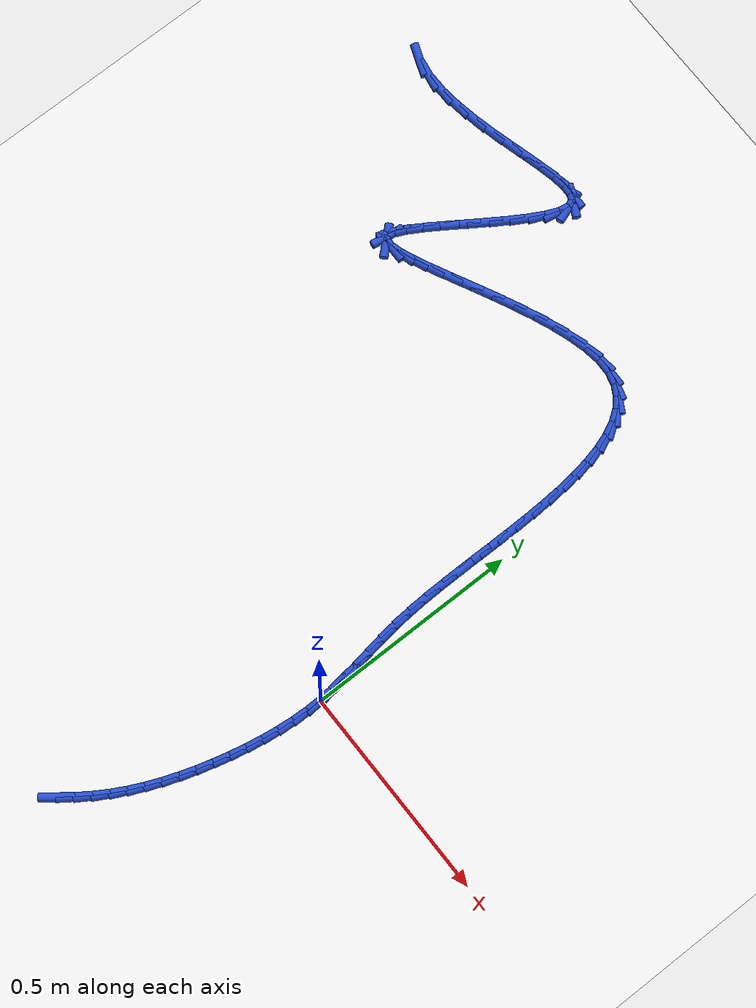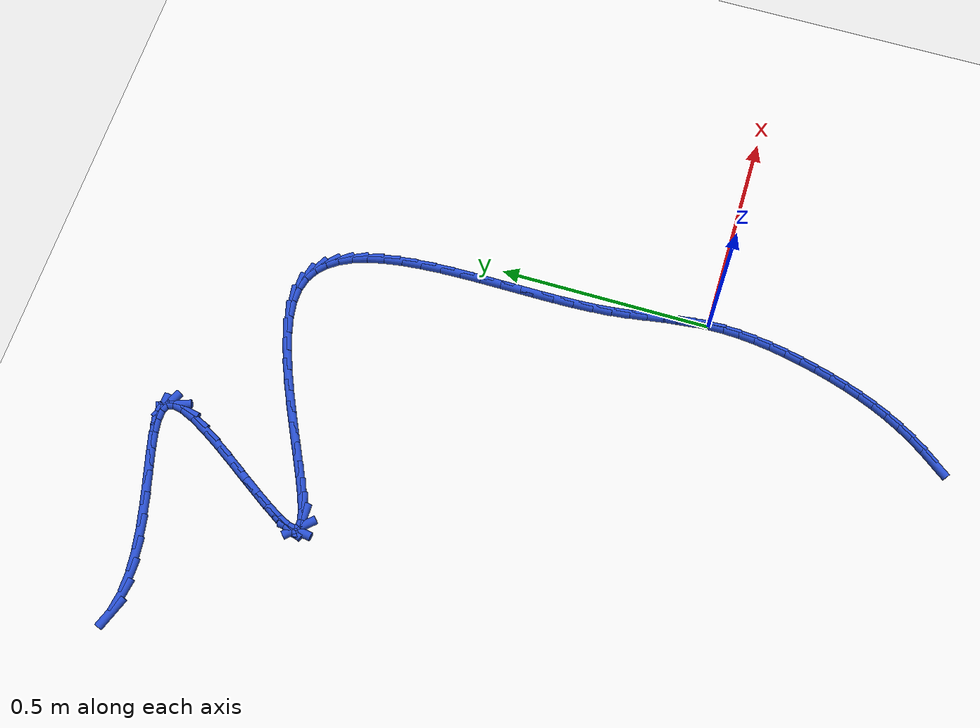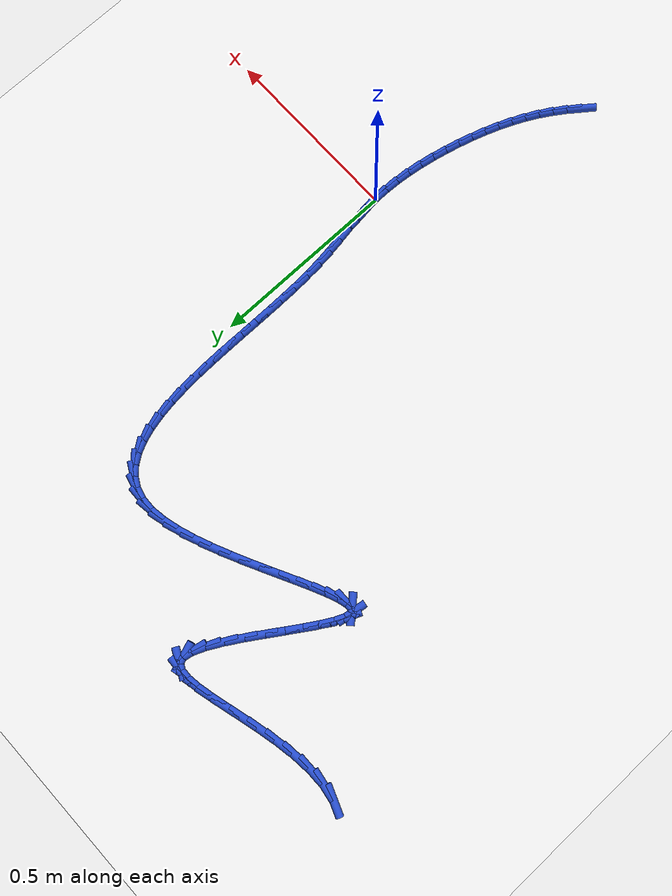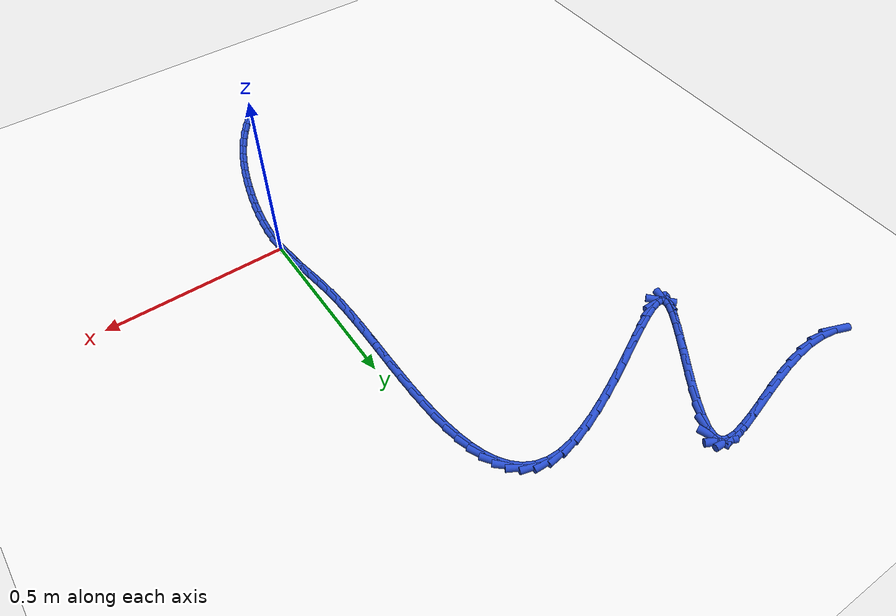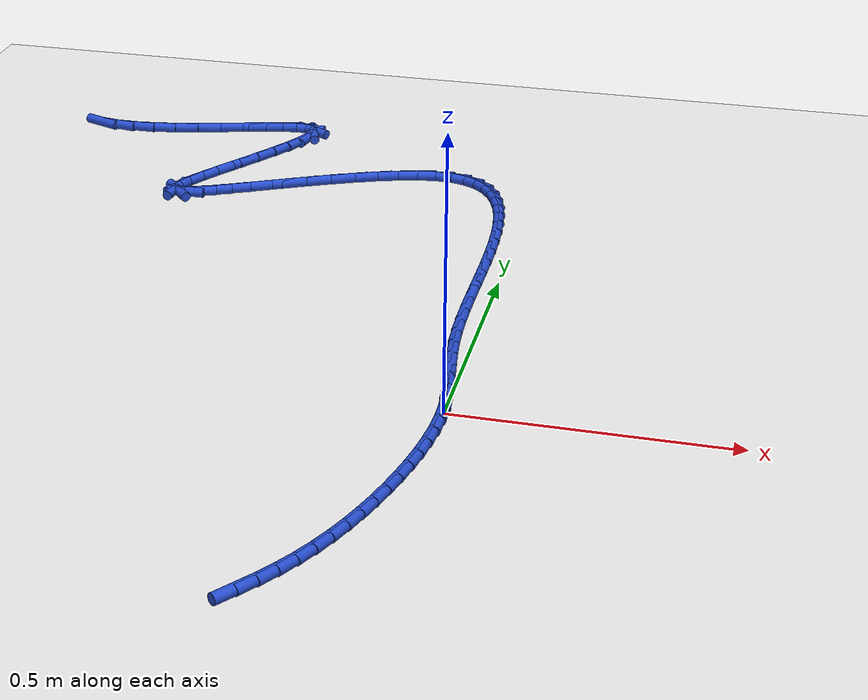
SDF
<sdf version="1.6">
 <world name="default">
  <model name="ground_plane">
   <static>1</static>
   <link name="link">
    <collision name="collision">
     <geometry><plane><normal>0 0 1</normal><size>100 100</size></plane></geometry>
     <surface><friction><ode><mu>100</mu><mu2>50</mu2></ode></friction></surface>
    </collision>
    <visual name="visual">
     <cast_shadows>0</cast_shadows>
     <geometry><plane><normal>0 0 1</normal><size>100 100</size></plane></geometry>
     <material>
      <script><uri>file://media/materials/scripts/gazebo.material</uri><name>Gazebo/WhiteGlow</name></script>
     </material>
    </visual>
   </link>
  </model>
  <model name="line">
   <link name="link_0">
    <pose>1.0408340855860843e-17 6.938893903907228e-18 0.01 0 1.57 -1.500443968666849</pose>
    <collision name="collision">
     <geometry><cylinder><radius>0.01</radius><length>0.08</length></cylinder></geometry>
    </collision>
    <visual name="visual">
     <material>
      <script><name>Gazebo/Blue</name><uri>file://media/materials/scripts/gazebo.material</uri></script>
     </material>
     <geometry><cylinder><radius>0.01</radius><length>0.08</length></cylinder></geometry>
    </visual>
   </link>
   <link name="link_1">
    <pose>-0.0025369876689253705 0.03600164637563605 0.01 0 1.57 -1.4529405909059698</pose>
    <collision name="collision">
     <geometry><cylinder><radius>0.01</radius><length>0.08</length></cylinder></geometry>
    </collision>
    <visual name="visual">
     <material>
      <script><name>Gazebo/Blue</name><uri>file://media/materials/scripts/gazebo.material</uri></script>
     </material>
     <geometry><cylinder><radius>0.01</radius><length>0.08</length></cylinder></geometry>
    </visual>
   </link>
   <link name="link_2">
    <pose>-0.0067697475077727115 0.07174996183603236 0.01 0 1.57 -1.4236694929863785</pose>
    <collision name="collision">
     <geometry><cylinder><radius>0.01</radius><length>0.08</length></cylinder></geometry>
    </collision>
    <visual name="visual">
     <material>
      <script><name>Gazebo/Blue</name><uri>file://media/materials/scripts/gazebo.material</uri></script>
     </material>
     <geometry><cylinder><radius>0.01</radius><length>0.08</length></cylinder></geometry>
    </visual>
   </link>
   <link name="link_3">
    <pose>-0.012106916807119367 0.10776381108110997 0.01 0 1.57 -1.4131349505841373</pose>
    <collision name="collision">
     <geometry><cylinder><radius>0.01</radius><length>0.08</length></cylinder></geometry>
    </collision>
    <visual name="visual">
     <material>
      <script><name>Gazebo/Blue</name><uri>file://media/materials/scripts/gazebo.material</uri></script>
     </material>
     <geometry><cylinder><radius>0.01</radius><length>0.08</length></cylinder></geometry>
    </visual>
   </link>
   <link name="link_4">
    <pose>-0.017957132857542687 0.1445620588107898 0.01 0 1.57 -1.4204519951015675</pose>
    <collision name="collision">
     <geometry><cylinder><radius>0.01</radius><length>0.08</length></cylinder></geometry>
    </collision>
    <visual name="visual">
     <material>
      <script><name>Gazebo/Blue</name><uri>file://media/materials/scripts/gazebo.material</uri></script>
     </material>
     <geometry><cylinder><radius>0.01</radius><length>0.08</length></cylinder></geometry>
    </visual>
   </link>
   <link name="link_5">
    <pose>-0.02372903294962001 0.18266356972499284 0.01 0 1.57 -1.4436858492961933</pose>
    <collision name="collision">
     <geometry><cylinder><radius>0.01</radius><length>0.08</length></cylinder></geometry>
    </collision>
    <visual name="visual">
     <material>
      <script><name>Gazebo/Blue</name><uri>file://media/materials/scripts/gazebo.material</uri></script>
     </material>
     <geometry><cylinder><radius>0.01</radius><length>0.08</length></cylinder></geometry>
    </visual>
   </link>
   <link name="link_6">
    <pose>-0.028831254373928694 0.22258720852364006 0.01 0 1.57 -1.4799480751914387</pose>
    <collision name="collision">
     <geometry><cylinder><radius>0.01</radius><length>0.08</length></cylinder></geometry>
    </collision>
    <visual name="visual">
     <material>
      <script><name>Gazebo/Blue</name><uri>file://media/materials/scripts/gazebo.material</uri></script>
     </material>
     <geometry><cylinder><radius>0.01</radius><length>0.08</length></cylinder></geometry>
    </visual>
   </link>
   <link name="link_7">
    <pose>-0.03268069156678858 0.2648427387323173 0.01 0 1.57 -1.5174231341432383</pose>
    <collision name="collision">
     <geometry><cylinder><radius>0.01</radius><length>0.08</length></cylinder></geometry>
    </collision>
    <visual name="visual">
     <material>
      <script><name>Gazebo/Blue</name><uri>file://media/materials/scripts/gazebo.material</uri></script>
     </material>
     <geometry><cylinder><radius>0.01</radius><length>0.08</length></cylinder></geometry>
    </visual>
   </link>
   <link name="link_8">
    <pose>-0.03506795434964404 0.309528008067227 0.01 0 1.57 -1.5443436570944173</pose>
    <collision name="collision">
     <geometry><cylinder><radius>0.01</radius><length>0.08</length></cylinder></geometry>
    </collision>
    <visual name="visual">
     <material>
      <script><name>Gazebo/Blue</name><uri>file://media/materials/scripts/gazebo.material</uri></script>
     </material>
     <geometry><cylinder><radius>0.01</radius><length>0.08</length></cylinder></geometry>
    </visual>
   </link>
   <link name="link_9">
    <pose>-0.03630203405338728 0.35616949483476634 0.01 0 1.57 -1.5618940222247308</pose>
    <collision name="collision">
     <geometry><cylinder><radius>0.01</radius><length>0.08</length></cylinder></geometry>
    </collision>
    <visual name="visual">
     <material>
      <script><name>Gazebo/Blue</name><uri>file://media/materials/scripts/gazebo.material</uri></script>
     </material>
     <geometry><cylinder><radius>0.01</radius><length>0.08</length></cylinder></geometry>
    </visual>
   </link>
   <link name="link_10">
    <pose>-0.03673008700555676 0.4042516111965887 0.01 0 1.57 1.5701674907434413</pose>
    <collision name="collision">
     <geometry><cylinder><radius>0.01</radius><length>0.08</length></cylinder></geometry>
    </collision>
    <visual name="visual">
     <material>
      <script><name>Gazebo/Blue</name><uri>file://media/materials/scripts/gazebo.material</uri></script>
     </material>
     <geometry><cylinder><radius>0.01</radius><length>0.08</length></cylinder></geometry>
    </visual>
   </link>
   <link name="link_11">
    <pose>-0.03669926953369084 0.4532587693143473 0.01 0 1.57 1.5679120502884816</pose>
    <collision name="collision">
     <geometry><cylinder><radius>0.01</radius><length>0.08</length></cylinder></geometry>
    </collision>
    <visual name="visual">
     <material>
      <script><name>Gazebo/Blue</name><uri>file://media/materials/scripts/gazebo.material</uri></script>
     </material>
     <geometry><cylinder><radius>0.01</radius><length>0.08</length></cylinder></geometry>
    </visual>
   </link>
   <link name="link_12">
    <pose>-0.03655673796532798 0.5026753813496957 0.01 0 1.57 -1.5689121318675527</pose>
    <collision name="collision">
     <geometry><cylinder><radius>0.01</radius><length>0.08</length></cylinder></geometry>
    </collision>
    <visual name="visual">
     <material>
      <script><name>Gazebo/Blue</name><uri>file://media/materials/scripts/gazebo.material</uri></script>
     </material>
     <geometry><cylinder><radius>0.01</radius><length>0.08</length></cylinder></geometry>
    </visual>
   </link>
   <link name="link_13">
    <pose>-0.03664964862800661 0.5519858594642875 0.01 0 1.57 -1.5569231878158445</pose>
    <collision name="collision">
     <geometry><cylinder><radius>0.01</radius><length>0.08</length></cylinder></geometry>
    </collision>
    <visual name="visual">
     <material>
      <script><name>Gazebo/Blue</name><uri>file://media/materials/scripts/gazebo.material</uri></script>
     </material>
     <geometry><cylinder><radius>0.01</radius><length>0.08</length></cylinder></geometry>
    </visual>
   </link>
   <link name="link_14">
    <pose>-0.03732515784926514 0.6006746158197754 0.01 0 1.57 -1.5370506717471328</pose>
    <collision name="collision">
     <geometry><cylinder><radius>0.01</radius><length>0.08</length></cylinder></geometry>
    </collision>
    <visual name="visual">
     <material>
      <script><name>Gazebo/Blue</name><uri>file://media/materials/scripts/gazebo.material</uri></script>
     </material>
     <geometry><cylinder><radius>0.01</radius><length>0.08</length></cylinder></geometry>
    </visual>
   </link>
   <link name="link_15">
    <pose>-0.03893042195664197 0.6482260625778136 0.01 0 1.57 -1.5080841927181026</pose>
    <collision name="collision">
     <geometry><cylinder><radius>0.01</radius><length>0.08</length></cylinder></geometry>
    </collision>
    <visual name="visual">
     <material>
      <script><name>Gazebo/Blue</name><uri>file://media/materials/scripts/gazebo.material</uri></script>
     </material>
     <geometry><cylinder><radius>0.01</radius><length>0.08</length></cylinder></geometry>
    </visual>
   </link>
   <link name="link_16">
    <pose>-0.04181259727767554 0.6941246119000548 0.01 0 1.57 -1.4681119663431792</pose>
    <collision name="collision">
     <geometry><cylinder><radius>0.01</radius><length>0.08</length></cylinder></geometry>
    </collision>
    <visual name="visual">
     <material>
      <script><name>Gazebo/Blue</name><uri>file://media/materials/scripts/gazebo.material</uri></script>
     </material>
     <geometry><cylinder><radius>0.01</radius><length>0.08</length></cylinder></geometry>
    </visual>
   </link>
   <link name="link_17">
    <pose>-0.046318840139904276 0.7378546759481527 0.01 0 1.57 -1.4142771526820412</pose>
    <collision name="collision">
     <geometry><cylinder><radius>0.01</radius><length>0.08</length></cylinder></geometry>
    </collision>
    <visual name="visual">
     <material>
      <script><name>Gazebo/Blue</name><uri>file://media/materials/scripts/gazebo.material</uri></script>
     </material>
     <geometry><cylinder><radius>0.01</radius><length>0.08</length></cylinder></geometry>
    </visual>
   </link>
   <link name="link_18">
    <pose>-0.052796306870866595 0.7789006668837611 0.01 0 1.57 -1.3424406977237866</pose>
    <collision name="collision">
     <geometry><cylinder><radius>0.01</radius><length>0.08</length></cylinder></geometry>
    </collision>
    <visual name="visual">
     <material>
      <script><name>Gazebo/Blue</name><uri>file://media/materials/scripts/gazebo.material</uri></script>
     </material>
     <geometry><cylinder><radius>0.01</radius><length>0.08</length></cylinder></geometry>
    </visual>
   </link>
   <link name="link_19">
    <pose>-0.061592153798100825 0.8167469968685326 0.01 0 1.57 -1.2468230367276674</pose>
    <collision name="collision">
     <geometry><cylinder><radius>0.01</radius><length>0.08</length></cylinder></geometry>
    </collision>
    <visual name="visual">
     <material>
      <script><name>Gazebo/Blue</name><uri>file://media/materials/scripts/gazebo.material</uri></script>
     </material>
     <geometry><cylinder><radius>0.01</radius><length>0.08</length></cylinder></geometry>
    </visual>
   </link>
   <link name="link_20">
    <pose>-0.07305353724914557 0.8508780780641211 0.01 0 1.57 -1.1199665621676775</pose>
    <collision name="collision">
     <geometry><cylinder><radius>0.01</radius><length>0.08</length></cylinder></geometry>
    </collision>
    <visual name="visual">
     <material>
      <script><name>Gazebo/Blue</name><uri>file://media/materials/scripts/gazebo.material</uri></script>
     </material>
     <geometry><cylinder><radius>0.01</radius><length>0.08</length></cylinder></geometry>
    </visual>
   </link>
   <link name="link_21">
    <pose>-0.08752761355153912 0.8807783226321797 0.01 0 1.57 -0.9540591162776518</pose>
    <collision name="collision">
     <geometry><cylinder><radius>0.01</radius><length>0.08</length></cylinder></geometry>
    </collision>
    <visual name="visual">
     <material>
      <script><name>Gazebo/Blue</name><uri>file://media/materials/scripts/gazebo.material</uri></script>
     </material>
     <geometry><cylinder><radius>0.01</radius><length>0.08</length></cylinder></geometry>
    </visual>
   </link>
   <link name="link_22">
    <pose>-0.10536153903281986 0.9059321427343617 0.01 0 1.57 -0.7456167441606393</pose>
    <collision name="collision">
     <geometry><cylinder><radius>0.01</radius><length>0.08</length></cylinder></geometry>
    </collision>
    <visual name="visual">
     <material>
      <script><name>Gazebo/Blue</name><uri>file://media/materials/scripts/gazebo.material</uri></script>
     </material>
     <geometry><cylinder><radius>0.01</radius><length>0.08</length></cylinder></geometry>
    </visual>
   </link>
   <link name="link_23">
    <pose>-0.12690247002052626 0.9258239505323209 0.01 0 1.57 -0.5039495929432688</pose>
    <collision name="collision">
     <geometry><cylinder><radius>0.01</radius><length>0.08</length></cylinder></geometry>
    </collision>
    <visual name="visual">
     <material>
      <script><name>Gazebo/Blue</name><uri>file://media/materials/scripts/gazebo.material</uri></script>
     </material>
     <geometry><cylinder><radius>0.01</radius><length>0.08</length></cylinder></geometry>
    </visual>
   </link>
   <link name="link_24">
    <pose>-0.15249756284219687 0.9399381581877106 0.01 0 1.57 -0.25505344413963066</pose>
    <collision name="collision">
     <geometry><cylinder><radius>0.01</radius><length>0.08</length></cylinder></geometry>
    </collision>
    <visual name="visual">
     <material>
      <script><name>Gazebo/Blue</name><uri>file://media/materials/scripts/gazebo.material</uri></script>
     </material>
     <geometry><cylinder><radius>0.01</radius><length>0.08</length></cylinder></geometry>
    </visual>
   </link>
   <link name="link_25">
    <pose>-0.18249397382536997 0.9477591778621841 0.01 0 1.57 -0.029323682449118125</pose>
    <collision name="collision">
     <geometry><cylinder><radius>0.01</radius><length>0.08</length></cylinder></geometry>
    </collision>
    <visual name="visual">
     <material>
      <script><name>Gazebo/Blue</name><uri>file://media/materials/scripts/gazebo.material</uri></script>
     </material>
     <geometry><cylinder><radius>0.01</radius><length>0.08</length></cylinder></geometry>
    </visual>
   </link>
   <link name="link_26">
    <pose>-0.21723323922063867 0.9487781531308197 0.01 0 1.57 0.14458358745321898</pose>
    <collision name="collision">
     <geometry><cylinder><radius>0.01</radius><length>0.08</length></cylinder></geometry>
    </collision>
    <visual name="visual">
     <material>
      <script><name>Gazebo/Blue</name><uri>file://media/materials/scripts/gazebo.material</uri></script>
     </material>
     <geometry><cylinder><radius>0.01</radius><length>0.08</length></cylinder></geometry>
    </visual>
   </link>
   <link name="link_27">
    <pose>-0.25658774041202315 0.9430481549938726 0.01 0 1.57 0.2600713470197988</pose>
    <collision name="collision">
     <geometry><cylinder><radius>0.01</radius><length>0.08</length></cylinder></geometry>
    </collision>
    <visual name="visual">
     <material>
      <script><name>Gazebo/Blue</name><uri>file://media/materials/scripts/gazebo.material</uri></script>
     </material>
     <geometry><cylinder><radius>0.01</radius><length>0.08</length></cylinder></geometry>
    </visual>
   </link>
   <link name="link_28">
    <pose>-0.29961452426344165 0.9315988164787293 0.01 0 1.57 0.3377523772484208</pose>
    <collision name="collision">
     <geometry><cylinder><radius>0.01</radius><length>0.08</length></cylinder></geometry>
    </collision>
    <visual name="visual">
     <material>
      <script><name>Gazebo/Blue</name><uri>file://media/materials/scripts/gazebo.material</uri></script>
     </material>
     <geometry><cylinder><radius>0.01</radius><length>0.08</length></cylinder></geometry>
    </visual>
   </link>
   <link name="link_29">
    <pose>-0.34528908086877824 0.9155574547445142 0.01 0 1.57 0.3911581954063963</pose>
    <collision name="collision">
     <geometry><cylinder><radius>0.01</radius><length>0.08</length></cylinder></geometry>
    </collision>
    <visual name="visual">
     <material>
      <script><name>Gazebo/Blue</name><uri>file://media/materials/scripts/gazebo.material</uri></script>
     </material>
     <geometry><cylinder><radius>0.01</radius><length>0.08</length></cylinder></geometry>
    </visual>
   </link>
   <link name="link_30">
    <pose>-0.39258690032191607 0.8960513869503501 0.01 0 1.57 0.42787759025588906</pose>
    <collision name="collision">
     <geometry><cylinder><radius>0.01</radius><length>0.08</length></cylinder></geometry>
    </collision>
    <visual name="visual">
     <material>
      <script><name>Gazebo/Blue</name><uri>file://media/materials/scripts/gazebo.material</uri></script>
     </material>
     <geometry><cylinder><radius>0.01</radius><length>0.08</length></cylinder></geometry>
    </visual>
   </link>
   <link name="link_31">
    <pose>-0.44048347271673927 0.8742079302553609 0.01 0 1.57 0.45209037355442655</pose>
    <collision name="collision">
     <geometry><cylinder><radius>0.01</radius><length>0.08</length></cylinder></geometry>
    </collision>
    <visual name="visual">
     <material>
      <script><name>Gazebo/Blue</name><uri>file://media/materials/scripts/gazebo.material</uri></script>
     </material>
     <geometry><cylinder><radius>0.01</radius><length>0.08</length></cylinder></geometry>
    </visual>
   </link>
   <link name="link_32">
    <pose>-0.4879542881471314 0.8511544018186704 0.01 0 1.57 0.4658356868698599</pose>
    <collision name="collision">
     <geometry><cylinder><radius>0.01</radius><length>0.08</length></cylinder></geometry>
    </collision>
    <visual name="visual">
     <material>
      <script><name>Gazebo/Blue</name><uri>file://media/materials/scripts/gazebo.material</uri></script>
     </material>
     <geometry><cylinder><radius>0.01</radius><length>0.08</length></cylinder></geometry>
    </visual>
   </link>
   <link name="link_33">
    <pose>-0.5339748367069761 0.8280181187994025 0.01 0 1.57 0.4694878983341049</pose>
    <collision name="collision">
     <geometry><cylinder><radius>0.01</radius><length>0.08</length></cylinder></geometry>
    </collision>
    <visual name="visual">
     <material>
      <script><name>Gazebo/Blue</name><uri>file://media/materials/scripts/gazebo.material</uri></script>
     </material>
     <geometry><cylinder><radius>0.01</radius><length>0.08</length></cylinder></geometry>
    </visual>
   </link>
   <link name="link_34">
    <pose>-0.5775206084901567 0.80592639835668 0.01 0 1.57 0.4615798399852503</pose>
    <collision name="collision">
     <geometry><cylinder><radius>0.01</radius><length>0.08</length></cylinder></geometry>
    </collision>
    <visual name="visual">
     <material>
      <script><name>Gazebo/Blue</name><uri>file://media/materials/scripts/gazebo.material</uri></script>
     </material>
     <geometry><cylinder><radius>0.01</radius><length>0.08</length></cylinder></geometry>
    </visual>
   </link>
   <link name="link_35">
    <pose>-0.6175670935905574 0.7860065576496273 0.01 0 1.57 0.43762970539203705</pose>
    <collision name="collision">
     <geometry><cylinder><radius>0.01</radius><length>0.08</length></cylinder></geometry>
    </collision>
    <visual name="visual">
     <material>
      <script><name>Gazebo/Blue</name><uri>file://media/materials/scripts/gazebo.material</uri></script>
     </material>
     <geometry><cylinder><radius>0.01</radius><length>0.08</length></cylinder></geometry>
    </visual>
   </link>
   <link name="link_36">
    <pose>-0.6530897821020614 0.7693859138373679 0.01 0 1.57 0.38637044259434405</pose>
    <collision name="collision">
     <geometry><cylinder><radius>0.01</radius><length>0.08</length></cylinder></geometry>
    </collision>
    <visual name="visual">
     <material>
      <script><name>Gazebo/Blue</name><uri>file://media/materials/scripts/gazebo.material</uri></script>
     </material>
     <geometry><cylinder><radius>0.01</radius><length>0.08</length></cylinder></geometry>
    </visual>
   </link>
   <link name="link_37">
    <pose>-0.6830641641185524 0.7571917840790253 0.01 0 1.57 0.2764868054256121</pose>
    <collision name="collision">
     <geometry><cylinder><radius>0.01</radius><length>0.08</length></cylinder></geometry>
    </collision>
    <visual name="visual">
     <material>
      <script><name>Gazebo/Blue</name><uri>file://media/materials/scripts/gazebo.material</uri></script>
     </material>
     <geometry><cylinder><radius>0.01</radius><length>0.08</length></cylinder></geometry>
    </visual>
   </link>
   <link name="link_38">
    <pose>-0.7064657297339147 0.7505514855337232 0.01 0 1.57 -0.0025847328109349192</pose>
    <collision name="collision">
     <geometry><cylinder><radius>0.01</radius><length>0.08</length></cylinder></geometry>
    </collision>
    <visual name="visual">
     <material>
      <script><name>Gazebo/Blue</name><uri>file://media/materials/scripts/gazebo.material</uri></script>
     </material>
     <geometry><cylinder><radius>0.01</radius><length>0.08</length></cylinder></geometry>
    </visual>
   </link>
   <link name="link_39">
    <pose>-0.7222699690420312 0.7505923353605852 0.01 0 1.57 -0.8297360873263988</pose>
    <collision name="collision">
     <geometry><cylinder><radius>0.01</radius><length>0.08</length></cylinder></geometry>
    </collision>
    <visual name="visual">
     <material>
      <script><name>Gazebo/Blue</name><uri>file://media/materials/scripts/gazebo.material</uri></script>
     </material>
     <geometry><cylinder><radius>0.01</radius><length>0.08</length></cylinder></geometry>
    </visual>
   </link>
   <link name="link_40">
    <pose>-0.7294523721367859 0.758441650718735 0.01 0 1.57 1.431003141177874</pose>
    <collision name="collision">
     <geometry><cylinder><radius>0.01</radius><length>0.08</length></cylinder></geometry>
    </collision>
    <visual name="visual">
     <material>
      <script><name>Gazebo/Blue</name><uri>file://media/materials/scripts/gazebo.material</uri></script>
     </material>
     <geometry><cylinder><radius>0.01</radius><length>0.08</length></cylinder></geometry>
    </visual>
   </link>
   <link name="link_41">
    <pose>-0.7271064222086081 0.7751137678074754 0.01 0 1.57 1.1502650298836266</pose>
    <collision name="collision">
     <geometry><cylinder><radius>0.01</radius><length>0.08</length></cylinder></geometry>
    </collision>
    <visual name="visual">
     <material>
      <script><name>Gazebo/Blue</name><uri>file://media/materials/scripts/gazebo.material</uri></script>
     </material>
     <geometry><cylinder><radius>0.01</radius><length>0.08</length></cylinder></geometry>
    </visual>
   </link>
   <link name="link_42">
    <pose>-0.7159444178381522 0.8000729718323228 0.01 0 1.57 1.0506521598981609</pose>
    <collision name="collision">
     <geometry><cylinder><radius>0.01</radius><length>0.08</length></cylinder></geometry>
    </collision>
    <visual name="visual">
     <material>
      <script><name>Gazebo/Blue</name><uri>file://media/materials/scripts/gazebo.material</uri></script>
     </material>
     <geometry><cylinder><radius>0.01</radius><length>0.08</length></cylinder></geometry>
    </visual>
   </link>
   <link name="link_43">
    <pose>-0.6978538093017287 0.8316583146555109 0.01 0 1.57 1.0067605238913357</pose>
    <collision name="collision">
     <geometry><cylinder><radius>0.01</radius><length>0.08</length></cylinder></geometry>
    </collision>
    <visual name="visual">
     <material>
      <script><name>Gazebo/Blue</name><uri>file://media/materials/scripts/gazebo.material</uri></script>
     </material>
     <geometry><cylinder><radius>0.01</radius><length>0.08</length></cylinder></geometry>
    </visual>
   </link>
   <link name="link_44">
    <pose>-0.6747484437576611 0.8681835725498236 0.01 0 1.57 0.9882613577577913</pose>
    <collision name="collision">
     <geometry><cylinder><radius>0.01</radius><length>0.08</length></cylinder></geometry>
    </collision>
    <visual name="visual">
     <material>
      <script><name>Gazebo/Blue</name><uri>file://media/materials/scripts/gazebo.material</uri></script>
     </material>
     <geometry><cylinder><radius>0.01</radius><length>0.08</length></cylinder></geometry>
    </visual>
   </link>
   <link name="link_45">
    <pose>-0.6485421683642731 0.9079625217880456 0.01 0 1.57 0.985661417324409</pose>
    <collision name="collision">
     <geometry><cylinder><radius>0.01</radius><length>0.08</length></cylinder></geometry>
    </collision>
    <visual name="visual">
     <material>
      <script><name>Gazebo/Blue</name><uri>file://media/materials/scripts/gazebo.material</uri></script>
     </material>
     <geometry><cylinder><radius>0.01</radius><length>0.08</length></cylinder></geometry>
    </visual>
   </link>
   <link name="link_46">
    <pose>-0.6211488302798881 0.9493089386429608 0.01 0 1.57 0.9966653613283086</pose>
    <collision name="collision">
     <geometry><cylinder><radius>0.01</radius><length>0.08</length></cylinder></geometry>
    </collision>
    <visual name="visual">
     <material>
      <script><name>Gazebo/Blue</name><uri>file://media/materials/scripts/gazebo.material</uri></script>
     </material>
     <geometry><cylinder><radius>0.01</radius><length>0.08</length></cylinder></geometry>
    </visual>
   </link>
   <link name="link_47">
    <pose>-0.5944822766628304 0.9905365993873536 0.01 0 1.57 1.0234615270394165</pose>
    <collision name="collision">
     <geometry><cylinder><radius>0.01</radius><length>0.08</length></cylinder></geometry>
    </collision>
    <visual name="visual">
     <material>
      <script><name>Gazebo/Blue</name><uri>file://media/materials/scripts/gazebo.material</uri></script>
     </material>
     <geometry><cylinder><radius>0.01</radius><length>0.08</length></cylinder></geometry>
    </visual>
   </link>
   <link name="link_48">
    <pose>-0.570456354671423 1.029959280294008 0.01 0 1.57 1.0741894098396336</pose>
    <collision name="collision">
     <geometry><cylinder><radius>0.01</radius><length>0.08</length></cylinder></geometry>
    </collision>
    <visual name="visual">
     <material>
      <script><name>Gazebo/Blue</name><uri>file://media/materials/scripts/gazebo.material</uri></script>
     </material>
     <geometry><cylinder><radius>0.01</radius><length>0.08</length></cylinder></geometry>
    </visual>
   </link>
   <link name="link_49">
    <pose>-0.5509849114639899 1.0658907576357088 0.01 0 1.57 1.1707821631627116</pose>
    <collision name="collision">
     <geometry><cylinder><radius>0.01</radius><length>0.08</length></cylinder></geometry>
    </collision>
    <visual name="visual">
     <material>
      <script><name>Gazebo/Blue</name><uri>file://media/materials/scripts/gazebo.material</uri></script>
     </material>
     <geometry><cylinder><radius>0.01</radius><length>0.08</length></cylinder></geometry>
    </visual>
   </link>
   <link name="link_50">
    <pose>-0.5379817941988547 1.0966448076852395 0.01 0 1.57 1.3797330720430225</pose>
    <collision name="collision">
     <geometry><cylinder><radius>0.01</radius><length>0.08</length></cylinder></geometry>
    </collision>
    <visual name="visual">
     <material>
      <script><name>Gazebo/Blue</name><uri>file://media/materials/scripts/gazebo.material</uri></script>
     </material>
     <geometry><cylinder><radius>0.01</radius><length>0.08</length></cylinder></geometry>
    </visual>
   </link>
   <link name="link_51">
    <pose>-0.533360850034341 1.1205352067153849 0.01 0 1.57 -1.2338911238755252</pose>
    <collision name="collision">
     <geometry><cylinder><radius>0.01</radius><length>0.08</length></cylinder></geometry>
    </collision>
    <visual name="visual">
     <material>
      <script><name>Gazebo/Blue</name><uri>file://media/materials/scripts/gazebo.material</uri></script>
     </material>
     <geometry><cylinder><radius>0.01</radius><length>0.08</length></cylinder></geometry>
    </visual>
   </link>
   <link name="link_52">
    <pose>-0.538809367825531 1.1360909057929303 0.01 0 1.57 -0.46155128257823674</pose>
    <collision name="collision">
     <geometry><cylinder><radius>0.01</radius><length>0.08</length></cylinder></geometry>
    </collision>
    <visual name="visual">
     <material>
      <script><name>Gazebo/Blue</name><uri>file://media/materials/scripts/gazebo.material</uri></script>
     </material>
     <geometry><cylinder><radius>0.01</radius><length>0.08</length></cylinder></geometry>
    </visual>
   </link>
   <link name="link_53">
    <pose>-0.5540744977054676 1.1436835116890747 0.01 0 1.57 -0.03928888125267057</pose>
    <collision name="collision">
     <geometry><cylinder><radius>0.01</radius><length>0.08</length></cylinder></geometry>
    </collision>
    <visual name="visual">
     <material>
      <script><name>Gazebo/Blue</name><uri>file://media/materials/scripts/gazebo.material</uri></script>
     </material>
     <geometry><cylinder><radius>0.01</radius><length>0.08</length></cylinder></geometry>
    </visual>
   </link>
   <link name="link_54">
    <pose>-0.5779177281899871 1.144620767844488 0.01 0 1.57 0.14030613843671622</pose>
    <collision name="collision">
     <geometry><cylinder><radius>0.01</radius><length>0.08</length></cylinder></geometry>
    </collision>
    <visual name="visual">
     <material>
      <script><name>Gazebo/Blue</name><uri>file://media/materials/scripts/gazebo.material</uri></script>
     </material>
     <geometry><cylinder><radius>0.01</radius><length>0.08</length></cylinder></geometry>
    </visual>
   </link>
   <link name="link_55">
    <pose>-0.6090927905944125 1.140217785136826 0.01 0 1.57 0.2224501259089498</pose>
    <collision name="collision">
     <geometry><cylinder><radius>0.01</radius><length>0.08</length></cylinder></geometry>
    </collision>
    <visual name="visual">
     <material>
      <script><name>Gazebo/Blue</name><uri>file://media/materials/scripts/gazebo.material</uri></script>
     </material>
     <geometry><cylinder><radius>0.01</radius><length>0.08</length></cylinder></geometry>
    </visual>
   </link>
   <link name="link_56">
    <pose>-0.6463534162340662 1.1317896744437455 0.01 0 1.57 0.25863839580004233</pose>
    <collision name="collision">
     <geometry><cylinder><radius>0.01</radius><length>0.08</length></cylinder></geometry>
    </collision>
    <visual name="visual">
     <material>
      <script><name>Gazebo/Blue</name><uri>file://media/materials/scripts/gazebo.material</uri></script>
     </material>
     <geometry><cylinder><radius>0.01</radius><length>0.08</length></cylinder></geometry>
    </visual>
   </link>
   <link name="link_57">
    <pose>-0.6884533364242709 1.1206515466429015 0.01 0 1.57 0.26770429717890715</pose>
    <collision name="collision">
     <geometry><cylinder><radius>0.01</radius><length>0.08</length></cylinder></geometry>
    </collision>
    <visual name="visual">
     <material>
      <script><name>Gazebo/Blue</name><uri>file://media/materials/scripts/gazebo.material</uri></script>
     </material>
     <geometry><cylinder><radius>0.01</radius><length>0.08</length></cylinder></geometry>
    </visual>
   </link>
   <link name="link_58">
    <pose>-0.734146282480349 1.10811851261195 0.01 0 1.57 0.2567552098267681</pose>
    <collision name="collision">
     <geometry><cylinder><radius>0.01</radius><length>0.08</length></cylinder></geometry>
    </collision>
    <visual name="visual">
     <material>
      <script><name>Gazebo/Blue</name><uri>file://media/materials/scripts/gazebo.material</uri></script>
     </material>
     <geometry><cylinder><radius>0.01</radius><length>0.08</length></cylinder></geometry>
    </visual>
   </link>
   <link name="link_59">
    <pose>-0.7821859857176232 1.0955056832285477 0.01 0 1.57 0.22752267779796073</pose>
    <collision name="collision">
     <geometry><cylinder><radius>0.01</radius><length>0.08</length></cylinder></geometry>
    </collision>
    <visual name="visual">
     <material>
      <script><name>Gazebo/Blue</name><uri>file://media/materials/scripts/gazebo.material</uri></script>
     </material>
     <geometry><cylinder><radius>0.01</radius><length>0.08</length></cylinder></geometry>
    </visual>
   </link>
   <link name="link_60">
    <pose>-0.8313261774514161 1.0841281693703504 0.01 0 1.57 0.1782529392411769</pose>
    <collision name="collision">
     <geometry><cylinder><radius>0.01</radius><length>0.08</length></cylinder></geometry>
    </collision>
    <visual name="visual">
     <material>
      <script><name>Gazebo/Blue</name><uri>file://media/materials/scripts/gazebo.material</uri></script>
     </material>
     <geometry><cylinder><radius>0.01</radius><length>0.08</length></cylinder></geometry>
    </visual>
   </link>
   <link name="link_61">
    <pose>-0.8803205889970505 1.075301081915013 0.01 0 1.57 0.10385407735832532</pose>
    <collision name="collision">
     <geometry><cylinder><radius>0.01</radius><length>0.08</length></cylinder></geometry>
    </collision>
    <visual name="visual">
     <material>
      <script><name>Gazebo/Blue</name><uri>file://media/materials/scripts/gazebo.material</uri></script>
     </material>
     <geometry><cylinder><radius>0.01</radius><length>0.08</length></cylinder></geometry>
    </visual>
   </link>
   <link name="link_62">
    <pose>-0.9279229516698488 1.070339531740193 0.01 0 1.57 -0.00487269881432938</pose>
    <collision name="collision">
     <geometry><cylinder><radius>0.01</radius><length>0.08</length></cylinder></geometry>
    </collision>
    <visual name="visual">
     <material>
      <script><name>Gazebo/Blue</name><uri>file://media/materials/scripts/gazebo.material</uri></script>
     </material>
     <geometry><cylinder><radius>0.01</radius><length>0.08</length></cylinder></geometry>
    </visual>
   </link>
   <link name="link_63">
    <pose>-0.9728869967851337 1.070558629723545 0.01 0 1.57 -0.16198518433022618</pose>
    <collision name="collision">
     <geometry><cylinder><radius>0.01</radius><length>0.08</length></cylinder></geometry>
    </collision>
    <visual name="visual">
     <material>
      <script><name>Gazebo/Blue</name><uri>file://media/materials/scripts/gazebo.material</uri></script>
     </material>
     <geometry><cylinder><radius>0.01</radius><length>0.08</length></cylinder></geometry>
    </visual>
   </link>
   <link name="link_64">
    <pose>-1.0139676473515455 1.0772719064512235 0.01 0 1.57 -0.36381109437509324</pose>
    <collision name="collision">
     <geometry><cylinder><radius>0.01</radius><length>0.08</length></cylinder></geometry>
    </collision>
    <visual name="visual">
     <material>
      <script><name>Gazebo/Blue</name><uri>file://media/materials/scripts/gazebo.material</uri></script>
     </material>
     <geometry><cylinder><radius>0.01</radius><length>0.08</length></cylinder></geometry>
    </visual>
   </link>
   <link name="link_234">
    <pose>-0.18198402421106016 -0.5656383287675826 0.01 0 1.57 0.9196325736156805</pose>
    <collision name="collision">
     <geometry><cylinder><radius>0.01</radius><length>0.08</length></cylinder></geometry>
    </collision>
    <visual name="visual">
     <material>
      <script><name>Gazebo/Blue</name><uri>file://media/materials/scripts/gazebo.material</uri></script>
     </material>
     <geometry><cylinder><radius>0.01</radius><length>0.08</length></cylinder></geometry>
    </visual>
   </link>
   <link name="link_235">
    <pose>-0.15944056179229246 -0.5360553755752568 0.01 0 1.57 0.9686000141289113</pose>
    <collision name="collision">
     <geometry><cylinder><radius>0.01</radius><length>0.08</length></cylinder></geometry>
    </collision>
    <visual name="visual">
     <material>
      <script><name>Gazebo/Blue</name><uri>file://media/materials/scripts/gazebo.material</uri></script>
     </material>
     <geometry><cylinder><radius>0.01</radius><length>0.08</length></cylinder></geometry>
    </visual>
   </link>
   <link name="link_236">
    <pose>-0.13840438974063335 -0.5054513397894133 0.01 0 1.57 1.0222448689874042</pose>
    <collision name="collision">
     <geometry><cylinder><radius>0.01</radius><length>0.08</length></cylinder></geometry>
    </collision>
    <visual name="visual">
     <material>
      <script><name>Gazebo/Blue</name><uri>file://media/materials/scripts/gazebo.material</uri></script>
     </material>
     <geometry><cylinder><radius>0.01</radius><length>0.08</length></cylinder></geometry>
    </visual>
   </link>
   <link name="link_237">
    <pose>-0.11901079040821903 -0.4737165056585431 0.01 0 1.57 1.0774787238852044</pose>
    <collision name="collision">
     <geometry><cylinder><radius>0.01</radius><length>0.08</length></cylinder></geometry>
    </collision>
    <visual name="visual">
     <material>
      <script><name>Gazebo/Blue</name><uri>file://media/materials/scripts/gazebo.material</uri></script>
     </material>
     <geometry><cylinder><radius>0.01</radius><length>0.08</length></cylinder></geometry>
    </visual>
   </link>
   <link name="link_238">
    <pose>-0.10132024333991897 -0.44081348215767213 0.01 0 1.57 1.128848463038189</pose>
    <collision name="collision">
     <geometry><cylinder><radius>0.01</radius><length>0.08</length></cylinder></geometry>
    </collision>
    <visual name="visual">
     <material>
      <script><name>Gazebo/Blue</name><uri>file://media/materials/scripts/gazebo.material</uri></script>
     </material>
     <geometry><cylinder><radius>0.01</radius><length>0.08</length></cylinder></geometry>
    </visual>
   </link>
   <link name="link_239">
    <pose>-0.08524784779153033 -0.4068454423667673 0.01 0 1.57 1.175798288197305</pose>
    <collision name="collision">
     <geometry><cylinder><radius>0.01</radius><length>0.08</length></cylinder></geometry>
    </collision>
    <visual name="visual">
     <material>
      <script><name>Gazebo/Blue</name><uri>file://media/materials/scripts/gazebo.material</uri></script>
     </material>
     <geometry><cylinder><radius>0.01</radius><length>0.08</length></cylinder></geometry>
    </visual>
   </link>
   <link name="link_240">
    <pose>-0.07069198549209245 -0.3719317230713486 0.01 0 1.57 1.2184575651266487</pose>
    <collision name="collision">
     <geometry><cylinder><radius>0.01</radius><length>0.08</length></cylinder></geometry>
    </collision>
    <visual name="visual">
     <material>
      <script><name>Gazebo/Blue</name><uri>file://media/materials/scripts/gazebo.material</uri></script>
     </material>
     <geometry><cylinder><radius>0.01</radius><length>0.08</length></cylinder></geometry>
    </visual>
   </link>
   <link name="link_241">
    <pose>-0.057551038170643554 -0.3361916610569331 0.01 0 1.57 1.2570024025359874</pose>
    <collision name="collision">
     <geometry><cylinder><radius>0.01</radius><length>0.08</length></cylinder></geometry>
    </collision>
    <visual name="visual">
     <material>
      <script><name>Gazebo/Blue</name><uri>file://media/materials/scripts/gazebo.material</uri></script>
     </material>
     <geometry><cylinder><radius>0.01</radius><length>0.08</length></cylinder></geometry>
    </visual>
   </link>
   <link name="link_242">
    <pose>-0.04572338755622302 -0.29974459310904084 0.01 0 1.57 1.2916326659835928</pose>
    <collision name="collision">
     <geometry><cylinder><radius>0.01</radius><length>0.08</length></cylinder></geometry>
    </collision>
    <visual name="visual">
     <material>
      <script><name>Gazebo/Blue</name><uri>file://media/materials/scripts/gazebo.material</uri></script>
     </material>
     <geometry><cylinder><radius>0.01</radius><length>0.08</length></cylinder></geometry>
    </visual>
   </link>
   <link name="link_243">
    <pose>-0.035107415377869884 -0.2627098560131908 0.01 0 1.57 1.3228288970964555</pose>
    <collision name="collision">
     <geometry><cylinder><radius>0.01</radius><length>0.08</length></cylinder></geometry>
    </collision>
    <visual name="visual">
     <material>
      <script><name>Gazebo/Blue</name><uri>file://media/materials/scripts/gazebo.material</uri></script>
     </material>
     <geometry><cylinder><radius>0.01</radius><length>0.08</length></cylinder></geometry>
    </visual>
   </link>
   <link name="link_244">
    <pose>-0.025613094853868628 -0.2252092735930062 0.01 0 1.57 1.3545772330924883</pose>
    <collision name="collision">
     <geometry><cylinder><radius>0.01</radius><length>0.08</length></cylinder></geometry>
    </collision>
    <visual name="visual">
     <material>
      <script><name>Gazebo/Blue</name><uri>file://media/materials/scripts/gazebo.material</uri></script>
     </material>
     <geometry><cylinder><radius>0.01</radius><length>0.08</length></cylinder></geometry>
    </visual>
   </link>
   <link name="link_245">
    <pose>-0.01730784225818008 -0.18739845022182336 0.01 0 1.57 1.3900020509857507</pose>
    <collision name="collision">
     <geometry><cylinder><radius>0.01</radius><length>0.08</length></cylinder></geometry>
    </collision>
    <visual name="visual">
     <material>
      <script><name>Gazebo/Blue</name><uri>file://media/materials/scripts/gazebo.material</uri></script>
     </material>
     <geometry><cylinder><radius>0.01</radius><length>0.08</length></cylinder></geometry>
    </visual>
   </link>
   <link name="link_246">
    <pose>-0.010372578862753721 -0.14945734359368124 0.01 0 1.57 1.4297047565430858</pose>
    <collision name="collision">
     <geometry><cylinder><radius>0.01</radius><length>0.08</length></cylinder></geometry>
    </collision>
    <visual name="visual">
     <material>
      <script><name>Gazebo/Blue</name><uri>file://media/materials/scripts/gazebo.material</uri></script>
     </material>
     <geometry><cylinder><radius>0.01</radius><length>0.08</length></cylinder></geometry>
    </visual>
   </link>
   <link name="link_247">
    <pose>-0.004990733803406054 -0.11156644948300383 0.01 0 1.57 1.4743103590244973</pose>
    <collision name="collision">
     <geometry><cylinder><radius>0.01</radius><length>0.08</length></cylinder></geometry>
    </collision>
    <visual name="visual">
     <material>
      <script><name>Gazebo/Blue</name><uri>file://media/materials/scripts/gazebo.material</uri></script>
     </material>
     <geometry><cylinder><radius>0.01</radius><length>0.08</length></cylinder></geometry>
    </visual>
   </link>
   <link name="link_248">
    <pose>-0.0013457362159535482 -0.07390626366421515 0.01 0 1.57 1.5245268738793505</pose>
    <collision name="collision">
     <geometry><cylinder><radius>0.01</radius><length>0.08</length></cylinder></geometry>
    </collision>
    <visual name="visual">
     <material>
      <script><name>Gazebo/Blue</name><uri>file://media/materials/scripts/gazebo.material</uri></script>
     </material>
     <geometry><cylinder><radius>0.01</radius><length>0.08</length></cylinder></geometry>
    </visual>
   </link>
   <link name="link_249">
    <pose>0.00037898476378729704 -0.036657281911739156 0.01 0 1.57 -1.5604581008790541</pose>
    <collision name="collision">
     <geometry><cylinder><radius>0.01</radius><length>0.08</length></cylinder></geometry>
    </collision>
    <visual name="visual">
     <material>
      <script><name>Gazebo/Blue</name><uri>file://media/materials/scripts/gazebo.material</uri></script>
     </material>
     <geometry><cylinder><radius>0.01</radius><length>0.08</length></cylinder></geometry>
    </visual>
   </link>
   <link name="link_250">
    <pose>8.673617379884035e-18 1.457167719820518e-16 0.01 0 1.57 -1.4966365426366552</pose>
    <collision name="collision">
     <geometry><cylinder><radius>0.01</radius><length>0.08</length></cylinder></geometry>
    </collision>
    <visual name="visual">
     <material>
      <script><name>Gazebo/Blue</name><uri>file://media/materials/scripts/gazebo.material</uri></script>
     </material>
     <geometry><cylinder><radius>0.01</radius><length>0.08</length></cylinder></geometry>
    </visual>
   </link>
   <link name="link_251">
    <pose>-0.0026661196431319086 0.03588508629657877 0.01 0 1.57 -1.424796208804226</pose>
    <collision name="collision">
     <geometry><cylinder><radius>0.01</radius><length>0.08</length></cylinder></geometry>
    </collision>
    <visual name="visual">
     <material>
      <script><name>Gazebo/Blue</name><uri>file://media/materials/scripts/gazebo.material</uri></script>
     </material>
     <geometry><cylinder><radius>0.01</radius><length>0.08</length></cylinder></geometry>
    </visual>
   </link>
   <link name="link_252">
    <pose>-0.007802803301424936 0.07081748120357269 0.01 0 1.57 -1.4610570968189205</pose>
    <collision name="collision">
     <geometry><cylinder><radius>0.01</radius><length>0.08</length></cylinder></geometry>
    </collision>
    <visual name="visual">
     <material>
      <script><name>Gazebo/Blue</name><uri>file://media/materials/scripts/gazebo.material</uri></script>
     </material>
     <geometry><cylinder><radius>0.01</radius><length>0.08</length></cylinder></geometry>
    </visual>
   </link>
  </model>
 </world>
</sdf>
